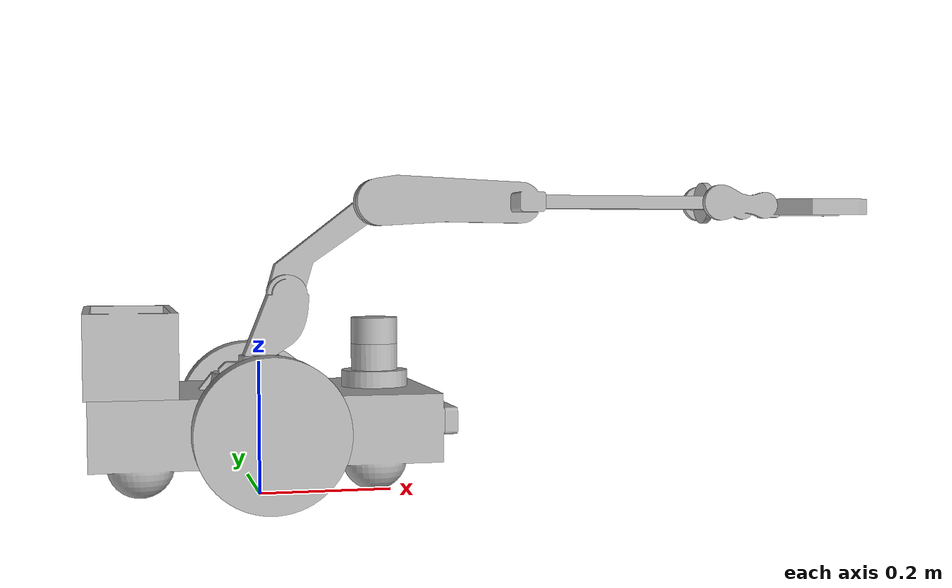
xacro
<?xml version="1.0" ?>
<robot name="moodz_v2_joints" xmlns:xacro="http://www.ros.org/wiki/xacro">

<xacro:include filename="$(find moodz_v2_joints_description)/urdf/materials.xacro" />
<xacro:include filename="$(find moodz_v2_joints_description)/urdf/moodz_v2_joints.trans" />
<xacro:include filename="$(find moodz_v2_joints_description)/urdf/moodz_v2_joints.gazebo" />
<link name="base_link">
  <inertial>
    <origin rpy="0 0 0" xyz="-0.0008536977330209317 0.21201241026235462 0.40388926590847196"/>
    <mass value="17.659377866056083"/>
    <inertia ixx="0.142704" ixy="-0.0" ixz="-0.004926" iyy="0.39546" iyz="-0.0" izz="0.494115"/>
  </inertial>
  <visual>
    <origin rpy="0 0 0" xyz="0 0 0"/>
    <geometry>
      <mesh filename="package://moodz_v2_joints_description/meshes/base_link.stl" scale="0.001 0.001 0.001"/>
    </geometry>
    <material name="silver"/>
  </visual>
  <collision>
    <origin rpy="0 0 0" xyz="0 0 0"/>
    <geometry>
      <mesh filename="package://moodz_v2_joints_description/meshes/base_link.stl" scale="0.001 0.001 0.001"/>
    </geometry>
  </collision>
</link>

<link name="gripper_left_1">
  <inertial>
    <origin rpy="0 0 0" xyz="0.06979842144934234 -0.032119912447441265 0.012499979615329337"/>
    <mass value="0.09315112792157795"/>
    <inertia ixx="1.7e-05" ixy="2.3e-05" ixz="-0.0" iyy="0.000138" iyz="-0.0" izz="0.000145"/>
  </inertial>
  <visual>
    <origin rpy="0 0 0" xyz="-0.790919 -0.139647 -0.715231"/>
    <geometry>
      <mesh filename="package://moodz_v2_joints_description/meshes/gripper_left_1.stl" scale="0.001 0.001 0.001"/>
    </geometry>
    <material name="silver"/>
  </visual>
  <collision>
    <origin rpy="0 0 0" xyz="-0.790919 -0.139647 -0.715231"/>
    <geometry>
      <mesh filename="package://moodz_v2_joints_description/meshes/gripper_left_1.stl" scale="0.001 0.001 0.001"/>
    </geometry>
  </collision>
</link>

<link name="gripper_right_1">
  <inertial>
    <origin rpy="0 0 0" xyz="0.06979842144934267 0.03211960614807452 0.012499979615329115"/>
    <mass value="0.09315112792157793"/>
    <inertia ixx="1.7e-05" ixy="-2.3e-05" ixz="-0.0" iyy="0.000138" iyz="-0.0" izz="0.000145"/>
  </inertial>
  <visual>
    <origin rpy="0 0 0" xyz="-0.790919 -0.169504 -0.715231"/>
    <geometry>
      <mesh filename="package://moodz_v2_joints_description/meshes/gripper_right_1.stl" scale="0.001 0.001 0.001"/>
    </geometry>
    <material name="silver"/>
  </visual>
  <collision>
    <origin rpy="0 0 0" xyz="-0.790919 -0.169504 -0.715231"/>
    <geometry>
      <mesh filename="package://moodz_v2_joints_description/meshes/gripper_right_1.stl" scale="0.001 0.001 0.001"/>
    </geometry>
  </collision>
</link>

<link name="fourth_link_1">
  <inertial>
    <origin rpy="0 0 0" xyz="0.1542527271108693 4.102623547552753e-07 -2.6672959840823296e-08"/>
    <mass value="0.47751052701600444"/>
    <inertia ixx="0.000158" ixy="-0.0" ixz="-0.0" iyy="0.003593" iyz="-0.0" izz="0.003693"/>
  </inertial>
  <visual>
    <origin rpy="0 0 0" xyz="-0.41682 -0.154512 -0.733231"/>
    <geometry>
      <mesh filename="package://moodz_v2_joints_description/meshes/fourth_link_1.stl" scale="0.001 0.001 0.001"/>
    </geometry>
    <material name="silver"/>
  </visual>
  <collision>
    <origin rpy="0 0 0" xyz="-0.41682 -0.154512 -0.733231"/>
    <geometry>
      <mesh filename="package://moodz_v2_joints_description/meshes/fourth_link_1.stl" scale="0.001 0.001 0.001"/>
    </geometry>
  </collision>
</link>

<link name="first_link_1">
  <inertial>
    <origin rpy="0 0 0" xyz="0.031130602528543307 0.00032156082446102574 0.0554422317522727"/>
    <mass value="0.4088582509753001"/>
    <inertia ixx="0.000452" ixy="-2e-06" ixz="-0.000138" iyy="0.000593" iyz="-7e-06" izz="0.000249"/>
  </inertial>
  <visual>
    <origin rpy="0 0 0" xyz="0.006274 -0.212012 -0.503231"/>
    <geometry>
      <mesh filename="package://moodz_v2_joints_description/meshes/first_link_1.stl" scale="0.001 0.001 0.001"/>
    </geometry>
    <material name="silver"/>
  </visual>
  <collision>
    <origin rpy="0 0 0" xyz="0.006274 -0.212012 -0.503231"/>
    <geometry>
      <mesh filename="package://moodz_v2_joints_description/meshes/first_link_1.stl" scale="0.001 0.001 0.001"/>
    </geometry>
  </collision>
</link>

<link name="right_wheel_1">
  <inertial>
    <origin rpy="0 0 0" xyz="-4.582176825066245e-07 -0.02499958973764492 -2.6672957564866095e-08"/>
    <mass value="1.767617106542297"/>
    <inertia ixx="0.005715" ixy="-0.0" ixz="-0.0" iyy="0.010694" iyz="-0.0" izz="0.005715"/>
  </inertial>
  <visual>
    <origin rpy="0 0 0" xyz="0.006274 -0.062012 -0.403231"/>
    <geometry>
      <mesh filename="package://moodz_v2_joints_description/meshes/right_wheel_1.stl" scale="0.001 0.001 0.001"/>
    </geometry>
    <material name="silver"/>
  </visual>
  <collision>
    <origin rpy="0 0 0" xyz="0.006274 -0.062012 -0.403231"/>
    <geometry>
      <mesh filename="package://moodz_v2_joints_description/meshes/right_wheel_1.stl" scale="0.001 0.001 0.001"/>
    </geometry>
  </collision>
</link>

<link name="left_wheel_1">
  <inertial>
    <origin rpy="0 0 0" xyz="-4.582176826532086e-07 0.025000410262354222 -2.6672958008955305e-08"/>
    <mass value="1.767617106542297"/>
    <inertia ixx="0.005715" ixy="-0.0" ixz="-0.0" iyy="0.010694" iyz="-0.0" izz="0.005715"/>
  </inertial>
  <visual>
    <origin rpy="0 0 0" xyz="0.006274 -0.362012 -0.403231"/>
    <geometry>
      <mesh filename="package://moodz_v2_joints_description/meshes/left_wheel_1.stl" scale="0.001 0.001 0.001"/>
    </geometry>
    <material name="silver"/>
  </visual>
  <collision>
    <origin rpy="0 0 0" xyz="0.006274 -0.362012 -0.403231"/>
    <geometry>
      <mesh filename="package://moodz_v2_joints_description/meshes/left_wheel_1.stl" scale="0.001 0.001 0.001"/>
    </geometry>
  </collision>
</link>

<link name="lidar_1">
  <inertial>
    <origin rpy="0 0 0" xyz="-4.582176828527018e-07 4.102623545332307e-07 0.019999973327042175"/>
    <mass value="0.21936170703690727"/>
    <inertia ixx="9.6e-05" ixy="-0.0" ixz="-0.0" iyy="9.6e-05" iyz="-0.0" izz="0.000134"/>
  </inertial>
  <visual>
    <origin rpy="0 0 0" xyz="-0.168726 -0.212012 -0.518231"/>
    <geometry>
      <mesh filename="package://moodz_v2_joints_description/meshes/lidar_1.stl" scale="0.001 0.001 0.001"/>
    </geometry>
    <material name="silver"/>
  </visual>
  <collision>
    <origin rpy="0 0 0" xyz="-0.168726 -0.212012 -0.518231"/>
    <geometry>
      <mesh filename="package://moodz_v2_joints_description/meshes/lidar_1.stl" scale="0.001 0.001 0.001"/>
    </geometry>
  </collision>
</link>

<link name="camera_1">
  <inertial>
    <origin rpy="0 0 0" xyz="0.008629221937877407 4.102623542834305e-07 -2.6672957620377247e-08"/>
    <mass value="0.1247883847656827"/>
    <inertia ixx="0.000237" ixy="-0.0" ixz="-0.0" iyy="2.4e-05" iyz="-0.0" izz="0.000221"/>
  </inertial>
  <visual>
    <origin rpy="0 0 0" xyz="-0.263726 -0.212012 -0.403231"/>
    <geometry>
      <mesh filename="package://moodz_v2_joints_description/meshes/camera_1.stl" scale="0.001 0.001 0.001"/>
    </geometry>
    <material name="silver"/>
  </visual>
  <collision>
    <origin rpy="0 0 0" xyz="-0.263726 -0.212012 -0.403231"/>
    <geometry>
      <mesh filename="package://moodz_v2_joints_description/meshes/camera_1.stl" scale="0.001 0.001 0.001"/>
    </geometry>
  </collision>
</link>

<link name="box_link_1">
  <inertial>
    <origin rpy="0 0 0" xyz="-0.18372545821768266 -0.3620125897376454 -0.246342481781317"/>
    <mass value="2.1007919999999998"/>
    <inertia ixx="0.024159" ixy="-0.0" ixz="-0.0" iyy="0.00824" iyz="0.0" izz="0.026243"/>
  </inertial>
  <visual>
    <origin rpy="0 0 0" xyz="0.012549 -0.574025 -0.746462"/>
    <geometry>
      <mesh filename="package://moodz_v2_joints_description/meshes/box_link_1.stl" scale="0.001 0.001 0.001"/>
    </geometry>
    <material name="silver"/>
  </visual>
  <collision>
    <origin rpy="0 0 0" xyz="0.012549 -0.574025 -0.746462"/>
    <geometry>
      <mesh filename="package://moodz_v2_joints_description/meshes/box_link_1.stl" scale="0.001 0.001 0.001"/>
    </geometry>
  </collision>
</link>

<link name="bottom_1">
  <inertial>
    <origin rpy="0 0 0" xyz="0.0043543804919945585 4.1026235489405316e-07 0.005145134617364822"/>
    <mass value="0.031225467481274055"/>
    <inertia ixx="9e-06" ixy="-0.0" ixz="0.0" iyy="6e-06" iyz="0.0" izz="1.4e-05"/>
  </inertial>
  <visual>
    <origin rpy="0 0 0" xyz="0.006274 -0.212012 -0.493231"/>
    <geometry>
      <mesh filename="package://moodz_v2_joints_description/meshes/bottom_1.stl" scale="0.001 0.001 0.001"/>
    </geometry>
    <material name="silver"/>
  </visual>
  <collision>
    <origin rpy="0 0 0" xyz="0.006274 -0.212012 -0.493231"/>
    <geometry>
      <mesh filename="package://moodz_v2_joints_description/meshes/bottom_1.stl" scale="0.001 0.001 0.001"/>
    </geometry>
  </collision>
</link>

<link name="holder_1">
  <inertial>
    <origin rpy="0 0 0" xyz="0.043211977279878355 0.03750331408535959 -0.002671388441347955"/>
    <mass value="0.18790918133612988"/>
    <inertia ixx="0.000282" ixy="-0.0" ixz="1.5e-05" iyy="0.000264" iyz="0.0" izz="0.000502"/>
  </inertial>
  <visual>
    <origin rpy="0 0 0" xyz="-0.69182 -0.117012 -0.733231"/>
    <geometry>
      <mesh filename="package://moodz_v2_joints_description/meshes/holder_1.stl" scale="0.001 0.001 0.001"/>
    </geometry>
    <material name="silver"/>
  </visual>
  <collision>
    <origin rpy="0 0 0" xyz="-0.69182 -0.117012 -0.733231"/>
    <geometry>
      <mesh filename="package://moodz_v2_joints_description/meshes/holder_1.stl" scale="0.001 0.001 0.001"/>
    </geometry>
  </collision>
</link>

<link name="third_link_1">
  <inertial>
    <origin rpy="0 0 0" xyz="0.12259762232749363 -0.017162136780192766 0.0015177591843557048"/>
    <mass value="0.6313097588186993"/>
    <inertia ixx="0.000424" ixy="0.00044" ixz="3.1e-05" iyy="0.004684" iyz="-7e-06" izz="0.004699"/>
  </inertial>
  <visual>
    <origin rpy="0 0 0" xyz="-0.17682 -0.212012 -0.733231"/>
    <geometry>
      <mesh filename="package://moodz_v2_joints_description/meshes/third_link_1.stl" scale="0.001 0.001 0.001"/>
    </geometry>
    <material name="silver"/>
  </visual>
  <collision>
    <origin rpy="0 0 0" xyz="-0.17682 -0.212012 -0.733231"/>
    <geometry>
      <mesh filename="package://moodz_v2_joints_description/meshes/third_link_1.stl" scale="0.001 0.001 0.001"/>
    </geometry>
  </collision>
</link>

<link name="second_link_1">
  <inertial>
    <origin rpy="0 0 0" xyz="0.07316933958651839 0.009666719121131429 0.08300584251953669"/>
    <mass value="0.5283411685558523"/>
    <inertia ixx="0.001642" ixy="0.000188" ixz="-0.001546" iyy="0.003352" iyz="0.000161" izz="0.001891"/>
  </inertial>
  <visual>
    <origin rpy="0 0 0" xyz="-0.03682 -0.232012 -0.593231"/>
    <geometry>
      <mesh filename="package://moodz_v2_joints_description/meshes/second_link_1.stl" scale="0.001 0.001 0.001"/>
    </geometry>
    <material name="silver"/>
  </visual>
  <collision>
    <origin rpy="0 0 0" xyz="-0.03682 -0.232012 -0.593231"/>
    <geometry>
      <mesh filename="package://moodz_v2_joints_description/meshes/second_link_1.stl" scale="0.001 0.001 0.001"/>
    </geometry>
  </collision>
</link>

<joint name="Rev1" type="continuous">
  <origin rpy="0 0 0" xyz="0.099099 0.022635 -0.018"/>
  <parent link="holder_1"/>
  <child link="gripper_left_1"/>
  <axis xyz="0.0 0.0 1.0"/>
</joint>

<joint name="Rev2" type="continuous">
  <origin rpy="0 0 0" xyz="0.099099 0.052492 -0.018"/>
  <parent link="holder_1"/>
  <child link="gripper_right_1"/>
  <axis xyz="0.0 0.0 1.0"/>
</joint>

<joint name="Rigid3" type="fixed">
  <origin rpy="0 0 0" xyz="0.24 -0.0575 0.0"/>
  <parent link="third_link_1"/>
  <child link="fourth_link_1"/>
</joint>

<joint name="Rev6" type="continuous">
  <origin rpy="0 0 0" xyz="0.0 0.0 0.01"/>
  <parent link="bottom_1"/>
  <child link="first_link_1"/>
  <axis xyz="-0.0 0.0 1.0"/>
</joint>

<joint name="Rev8" type="continuous">
  <origin rpy="0 0 0" xyz="-0.006274 0.062012 0.403231"/>
  <parent link="base_link"/>
  <child link="right_wheel_1"/>
  <axis xyz="0.0 -1.0 0.0"/>
</joint>

<joint name="Rev9" type="continuous">
  <origin rpy="0 0 0" xyz="-0.006274 0.362012 0.403231"/>
  <parent link="base_link"/>
  <child link="left_wheel_1"/>
  <axis xyz="-0.0 1.0 -0.0"/>
</joint>

<joint name="Rev10" type="continuous">
  <origin rpy="0 0 0" xyz="0.168726 0.212012 0.518231"/>
  <parent link="base_link"/>
  <child link="lidar_1"/>
  <axis xyz="-0.0 0.0 1.0"/>
</joint>

<joint name="Rigid11" type="fixed">
  <origin rpy="0 0 0" xyz="0.263726 0.212012 0.403231"/>
  <parent link="base_link"/>
  <child link="camera_1"/>
</joint>

<joint name="Rigid14" type="fixed">
  <origin rpy="0 0 0" xyz="-0.012549 0.574025 0.746462"/>
  <parent link="base_link"/>
  <child link="box_link_1"/>
</joint>

<joint name="Rigid15" type="fixed">
  <origin rpy="0 0 0" xyz="-0.006274 0.212012 0.493231"/>
  <parent link="base_link"/>
  <child link="bottom_1"/>
</joint>

<joint name="Rev16" type="continuous">
  <origin rpy="0 0 0" xyz="0.275 -0.0375 0.0"/>
  <parent link="fourth_link_1"/>
  <child link="holder_1"/>
  <axis xyz="-0.0 -1.0 0.0"/>
</joint>

<joint name="Rev17" type="continuous">
  <origin rpy="0 0 0" xyz="0.14 -0.02 0.14"/>
  <parent link="second_link_1"/>
  <child link="third_link_1"/>
  <axis xyz="-0.0 -1.0 0.0"/>
</joint>

<joint name="Rev18" type="continuous">
  <origin rpy="0 0 0" xyz="0.043094 0.02 0.09"/>
  <parent link="first_link_1"/>
  <child link="second_link_1"/>
  <axis xyz="0.0 1.0 -0.0"/>
</joint>

</robot>

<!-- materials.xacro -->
<robot name="moodz_v2_joints" xmlns:xacro="http://www.ros.org/wiki/xacro" >

<material name="silver">
  <color rgba="0.700 0.700 0.700 1.000"/>
</material>

</robot>

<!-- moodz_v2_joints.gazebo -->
<robot name="moodz_v2_joints" xmlns:xacro="http://www.ros.org/wiki/xacro" >

<xacro:property name="body_color" value="Gazebo/Silver" />

<gazebo>
  <plugin filename="libgazebo_ros_control.so" name="control"/>
</gazebo>
<gazebo reference="base_link">
  <material>${body_color}</material>
  <mu1>0.2</mu1>
  <mu2>0.2</mu2>
  <selfCollide>true</selfCollide>
  <gravity>true</gravity>
</gazebo>

<gazebo reference="gripper_left_1">
  <material>${body_color}</material>
  <mu1>0.2</mu1>
  <mu2>0.2</mu2>
  <selfCollide>true</selfCollide>
</gazebo>

<gazebo reference="gripper_right_1">
  <material>${body_color}</material>
  <mu1>0.2</mu1>
  <mu2>0.2</mu2>
  <selfCollide>true</selfCollide>
</gazebo>

<gazebo reference="fourth_link_1">
  <material>${body_color}</material>
  <mu1>0.2</mu1>
  <mu2>0.2</mu2>
  <selfCollide>true</selfCollide>
</gazebo>

<gazebo reference="first_link_1">
  <material>${body_color}</material>
  <mu1>0.2</mu1>
  <mu2>0.2</mu2>
  <selfCollide>true</selfCollide>
</gazebo>

<gazebo reference="right_wheel_1">
  <material>${body_color}</material>
  <mu1>0.2</mu1>
  <mu2>0.2</mu2>
  <selfCollide>true</selfCollide>
</gazebo>

<gazebo reference="left_wheel_1">
  <material>${body_color}</material>
  <mu1>0.2</mu1>
  <mu2>0.2</mu2>
  <selfCollide>true</selfCollide>
</gazebo>

<gazebo reference="lidar_1">
  <material>${body_color}</material>
  <mu1>0.2</mu1>
  <mu2>0.2</mu2>
  <selfCollide>true</selfCollide>
</gazebo>

<gazebo reference="camera_1">
  <material>${body_color}</material>
  <mu1>0.2</mu1>
  <mu2>0.2</mu2>
  <selfCollide>true</selfCollide>
</gazebo>

<gazebo reference="box_link_1">
  <material>${body_color}</material>
  <mu1>0.2</mu1>
  <mu2>0.2</mu2>
  <selfCollide>true</selfCollide>
</gazebo>

<gazebo reference="bottom_1">
  <material>${body_color}</material>
  <mu1>0.2</mu1>
  <mu2>0.2</mu2>
  <selfCollide>true</selfCollide>
</gazebo>

<gazebo reference="holder_1">
  <material>${body_color}</material>
  <mu1>0.2</mu1>
  <mu2>0.2</mu2>
  <selfCollide>true</selfCollide>
</gazebo>

<gazebo reference="third_link_1">
  <material>${body_color}</material>
  <mu1>0.2</mu1>
  <mu2>0.2</mu2>
  <selfCollide>true</selfCollide>
</gazebo>

<gazebo reference="second_link_1">
  <material>${body_color}</material>
  <mu1>0.2</mu1>
  <mu2>0.2</mu2>
  <selfCollide>true</selfCollide>
</gazebo>

</robot>
